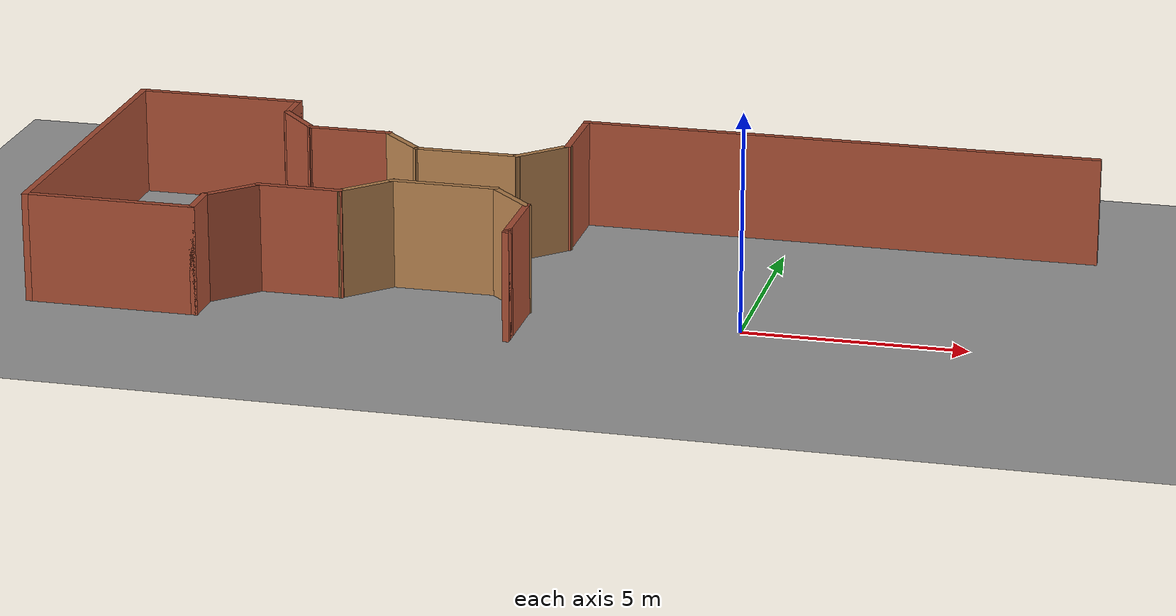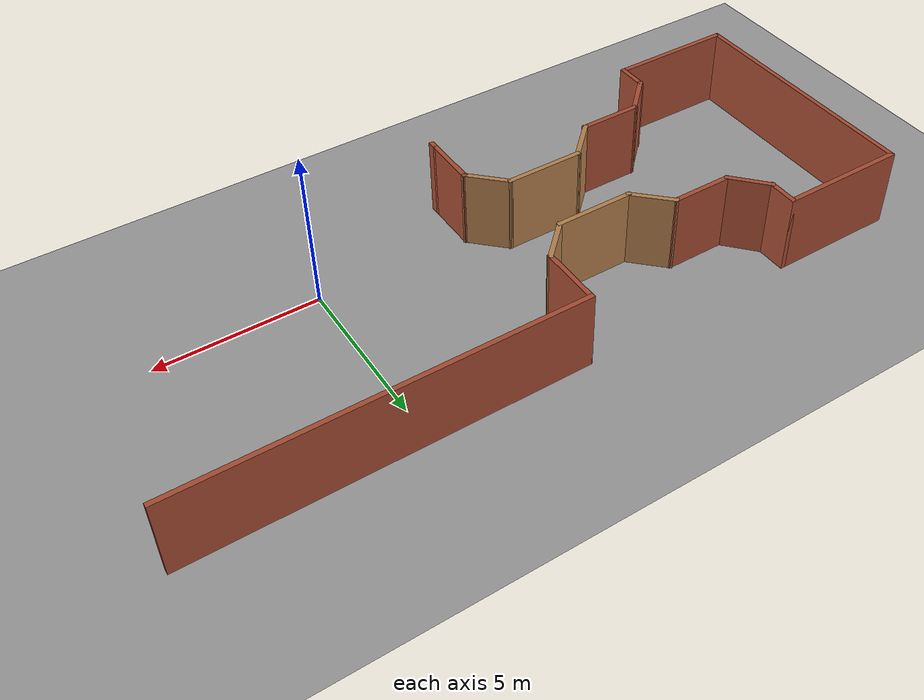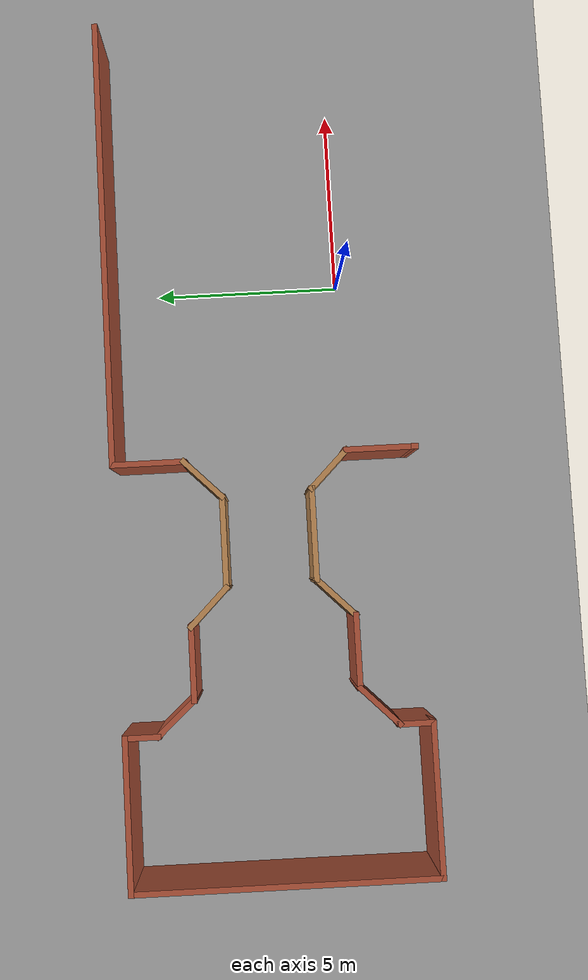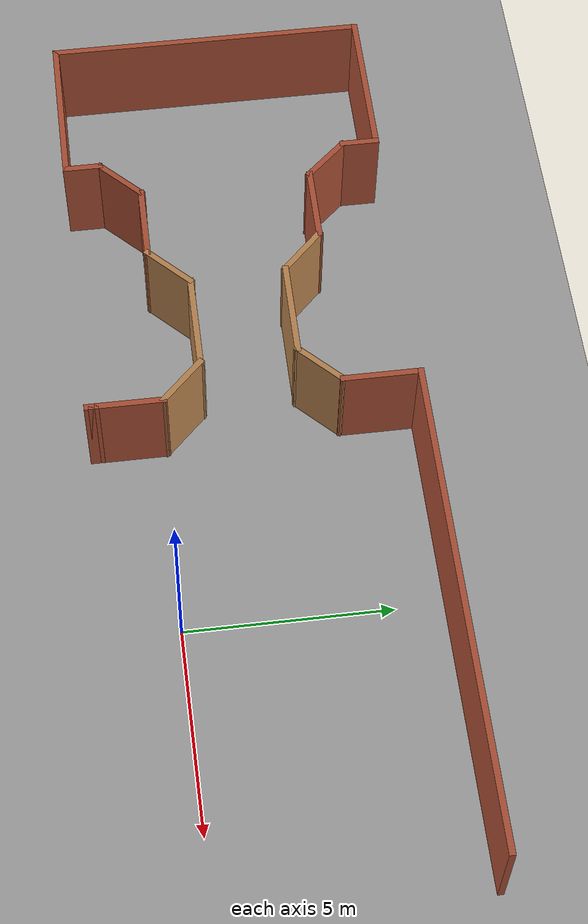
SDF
<sdf version="1.6">
 <world name="default">
  <model name="ground_plane_0">
   <static>1</static>
   <link name="link">
    <collision name="collision">
     <geometry><plane><normal>0 0 1</normal><size>100 100</size></plane></geometry>
     <surface><friction><ode><mu>100</mu><mu2>50</mu2></ode></friction></surface>
    </collision>
    <visual name="visual">
     <cast_shadows>0</cast_shadows>
     <geometry><plane><normal>0 0 1</normal><size>100 100</size></plane></geometry>
     <material>
      <script><uri>file://media/materials/scripts/gazebo.material</uri><name>Gazebo/Grey</name></script>
     </material>
    </visual>
   </link>
   <pose>-18.1806 -4.02372 0 0 -0 0</pose>
  </model>
  <model name="NewEnv1_0">
   <link name="Wall_12">
    <pose>-16.8734 -0.082813 0 0 0 -1.5708</pose>
    <visual name="Wall_12_Visual">
     <pose>0 0 1.25 0 -0 0</pose>
     <geometry><box><size>8 0.15 2.5</size></box></geometry>
     <material>
      <script><uri>file://media/materials/scripts/gazebo.material</uri><name>Gazebo/Bricks</name></script>
      <ambient>1 1 1 1</ambient>
      <diffuse>1 1 1 1</diffuse>
      <specular>0.2 0.2 0.2 1</specular>
      <emissive>0 0 0 1</emissive>
     </material>
    </visual>
    <collision name="Wall_12_Collision">
     <pose>0 0 1.25 0 -0 0</pose>
     <geometry><box><size>8 0.15 2.5</size></box></geometry>
     <surface>
      <friction>
       <ode><mu>1</mu><mu2>1</mu2><fdir1>0 0 0</fdir1><slip1>0</slip1><slip2>0</slip2></ode>
       <torsional>
        <coefficient>1</coefficient>
        <patch_radius>0</patch_radius>
        <surface_radius>0</surface_radius>
        <use_patch_radius>1</use_patch_radius>
        <ode><slip>0</slip></ode>
       </torsional>
      </friction>
      <bounce><restitution_coefficient>0</restitution_coefficient><threshold>1e+06</threshold></bounce>
      <contact>
       <collide_without_contact>0</collide_without_contact>
       <collide_without_contact_bitmask>1</collide_without_contact_bitmask>
       <collide_bitmask>1</collide_bitmask>
       <ode>
        <soft_cfm>0</soft_cfm>
        <soft_erp>0.2</soft_erp>
        <kp>1e+13</kp>
        <kd>1</kd>
        <max_vel>0.01</max_vel>
        <min_depth>0</min_depth>
       </ode>
       <bullet>
        <split_impulse>1</split_impulse>
        <split_impulse_penetration_threshold>-0.01</split_impulse_penetration_threshold>
        <soft_cfm>0</soft_cfm>
        <soft_erp>0.2</soft_erp>
        <kp>1e+13</kp>
        <kd>1</kd>
       </bullet>
      </contact>
     </surface>
    </collision>
   </link>
   <link name="Wall_13">
    <pose>-14.9484 -4.00781 0 0 -0 0</pose>
    <visual name="Wall_13_Visual">
     <pose>0 0 1.25 0 -0 0</pose>
     <geometry><box><size>4 0.15 2.5</size></box></geometry>
     <material>
      <script><uri>file://media/materials/scripts/gazebo.material</uri><name>Gazebo/Bricks</name></script>
      <ambient>1 1 1 1</ambient>
      <diffuse>1 1 1 1</diffuse>
      <specular>0.2 0.2 0.2 1</specular>
      <emissive>0 0 0 1</emissive>
     </material>
    </visual>
    <collision name="Wall_13_Collision">
     <pose>0 0 1.25 0 -0 0</pose>
     <geometry><box><size>4 0.15 2.5</size></box></geometry>
     <surface>
      <friction>
       <ode><mu>1</mu><mu2>1</mu2><fdir1>0 0 0</fdir1><slip1>0</slip1><slip2>0</slip2></ode>
       <torsional>
        <coefficient>1</coefficient>
        <patch_radius>0</patch_radius>
        <surface_radius>0</surface_radius>
        <use_patch_radius>1</use_patch_radius>
        <ode><slip>0</slip></ode>
       </torsional>
      </friction>
      <bounce><restitution_coefficient>0</restitution_coefficient><threshold>1e+06</threshold></bounce>
      <contact>
       <collide_without_contact>0</collide_without_contact>
       <collide_without_contact_bitmask>1</collide_without_contact_bitmask>
       <collide_bitmask>1</collide_bitmask>
       <ode>
        <soft_cfm>0</soft_cfm>
        <soft_erp>0.2</soft_erp>
        <kp>1e+13</kp>
        <kd>1</kd>
        <max_vel>0.01</max_vel>
        <min_depth>0</min_depth>
       </ode>
       <bullet>
        <split_impulse>1</split_impulse>
        <split_impulse_penetration_threshold>-0.01</split_impulse_penetration_threshold>
        <soft_cfm>0</soft_cfm>
        <soft_erp>0.2</soft_erp>
        <kp>1e+13</kp>
        <kd>1</kd>
       </bullet>
      </contact>
     </surface>
    </collision>
   </link>
   <link name="Wall_14">
    <pose>-13.0234 -3.58281 0 0 -0 1.5708</pose>
    <visual name="Wall_14_Visual">
     <pose>0 0 1.25 0 -0 0</pose>
     <geometry><box><size>1 0.15 2.5</size></box></geometry>
     <material>
      <script><uri>file://media/materials/scripts/gazebo.material</uri><name>Gazebo/Bricks</name></script>
      <ambient>1 1 1 1</ambient>
      <diffuse>1 1 1 1</diffuse>
      <specular>0.2 0.2 0.2 1</specular>
      <emissive>0 0 0 1</emissive>
     </material>
    </visual>
    <collision name="Wall_14_Collision">
     <pose>0 0 1.25 0 -0 0</pose>
     <geometry><box><size>1 0.15 2.5</size></box></geometry>
     <surface>
      <friction>
       <ode><mu>1</mu><mu2>1</mu2><fdir1>0 0 0</fdir1><slip1>0</slip1><slip2>0</slip2></ode>
       <torsional>
        <coefficient>1</coefficient>
        <patch_radius>0</patch_radius>
        <surface_radius>0</surface_radius>
        <use_patch_radius>1</use_patch_radius>
        <ode><slip>0</slip></ode>
       </torsional>
      </friction>
      <bounce><restitution_coefficient>0</restitution_coefficient><threshold>1e+06</threshold></bounce>
      <contact>
       <collide_without_contact>0</collide_without_contact>
       <collide_without_contact_bitmask>1</collide_without_contact_bitmask>
       <collide_bitmask>1</collide_bitmask>
       <ode>
        <soft_cfm>0</soft_cfm>
        <soft_erp>0.2</soft_erp>
        <kp>1e+13</kp>
        <kd>1</kd>
        <max_vel>0.01</max_vel>
        <min_depth>0</min_depth>
       </ode>
       <bullet>
        <split_impulse>1</split_impulse>
        <split_impulse_penetration_threshold>-0.01</split_impulse_penetration_threshold>
        <soft_cfm>0</soft_cfm>
        <soft_erp>0.2</soft_erp>
        <kp>1e+13</kp>
        <kd>1</kd>
       </bullet>
      </contact>
     </surface>
    </collision>
   </link>
   <link name="Wall_15">
    <pose>-12.5461 -2.68052 0 0 -0 0.785398</pose>
    <visual name="Wall_15_Visual">
     <pose>0 0 1.25 0 -0 0</pose>
     <geometry><box><size>1.5 0.15 2.5</size></box></geometry>
     <material>
      <script><uri>file://media/materials/scripts/gazebo.material</uri><name>Gazebo/Bricks</name></script>
      <ambient>1 1 1 1</ambient>
      <diffuse>1 1 1 1</diffuse>
      <specular>0.2 0.2 0.2 1</specular>
      <emissive>0 0 0 1</emissive>
     </material>
    </visual>
    <collision name="Wall_15_Collision">
     <pose>0 0 1.25 0 -0 0</pose>
     <geometry><box><size>1.5 0.15 2.5</size></box></geometry>
     <surface>
      <friction>
       <ode><mu>1</mu><mu2>1</mu2><fdir1>0 0 0</fdir1><slip1>0</slip1><slip2>0</slip2></ode>
       <torsional>
        <coefficient>1</coefficient>
        <patch_radius>0</patch_radius>
        <surface_radius>0</surface_radius>
        <use_patch_radius>1</use_patch_radius>
        <ode><slip>0</slip></ode>
       </torsional>
      </friction>
      <bounce><restitution_coefficient>0</restitution_coefficient><threshold>1e+06</threshold></bounce>
      <contact>
       <collide_without_contact>0</collide_without_contact>
       <collide_without_contact_bitmask>1</collide_without_contact_bitmask>
       <collide_bitmask>1</collide_bitmask>
       <ode>
        <soft_cfm>0</soft_cfm>
        <soft_erp>0.2</soft_erp>
        <kp>1e+13</kp>
        <kd>1</kd>
        <max_vel>0.01</max_vel>
        <min_depth>0</min_depth>
       </ode>
       <bullet>
        <split_impulse>1</split_impulse>
        <split_impulse_penetration_threshold>-0.01</split_impulse_penetration_threshold>
        <soft_cfm>0</soft_cfm>
        <soft_erp>0.2</soft_erp>
        <kp>1e+13</kp>
        <kd>1</kd>
       </bullet>
      </contact>
     </surface>
    </collision>
   </link>
   <link name="Wall_16">
    <pose>-11.1438 -2.20322 0 0 -0 0</pose>
    <visual name="Wall_16_Visual">
     <pose>0 0 1.25 0 -0 0</pose>
     <geometry><box><size>2 0.15 2.5</size></box></geometry>
     <material>
      <script><uri>file://media/materials/scripts/gazebo.material</uri><name>Gazebo/Bricks</name></script>
      <ambient>1 1 1 1</ambient>
      <diffuse>1 1 1 1</diffuse>
      <specular>0.2 0.2 0.2 1</specular>
      <emissive>0 0 0 1</emissive>
     </material>
    </visual>
    <collision name="Wall_16_Collision">
     <pose>0 0 1.25 0 -0 0</pose>
     <geometry><box><size>2 0.15 2.5</size></box></geometry>
     <surface>
      <friction>
       <ode><mu>1</mu><mu2>1</mu2><fdir1>0 0 0</fdir1><slip1>0</slip1><slip2>0</slip2></ode>
       <torsional>
        <coefficient>1</coefficient>
        <patch_radius>0</patch_radius>
        <surface_radius>0</surface_radius>
        <use_patch_radius>1</use_patch_radius>
        <ode><slip>0</slip></ode>
       </torsional>
      </friction>
      <bounce><restitution_coefficient>0</restitution_coefficient><threshold>1e+06</threshold></bounce>
      <contact>
       <collide_without_contact>0</collide_without_contact>
       <collide_without_contact_bitmask>1</collide_without_contact_bitmask>
       <collide_bitmask>1</collide_bitmask>
       <ode>
        <soft_cfm>0</soft_cfm>
        <soft_erp>0.2</soft_erp>
        <kp>1e+13</kp>
        <kd>1</kd>
        <max_vel>0.01</max_vel>
        <min_depth>0</min_depth>
       </ode>
       <bullet>
        <split_impulse>1</split_impulse>
        <split_impulse_penetration_threshold>-0.01</split_impulse_penetration_threshold>
        <soft_cfm>0</soft_cfm>
        <soft_erp>0.2</soft_erp>
        <kp>1e+13</kp>
        <kd>1</kd>
       </bullet>
      </contact>
     </surface>
    </collision>
   </link>
   <link name="Wall_17">
    <pose>-9.74146 -1.72592 0 0 -0 0.785398</pose>
    <visual name="Wall_17_Visual">
     <pose>0 0 1.25 0 -0 0</pose>
     <geometry><box><size>1.5 0.15 2.5</size></box></geometry>
     <material>
      <script><uri>file://media/materials/scripts/gazebo.material</uri><name>Gazebo/Wood</name></script>
      <ambient>1 1 1 1</ambient>
      <diffuse>1 1 1 1</diffuse>
      <specular>0.2 0.2 0.2 1</specular>
      <emissive>0 0 0 1</emissive>
     </material>
    </visual>
    <collision name="Wall_17_Collision">
     <pose>0 0 1.25 0 -0 0</pose>
     <geometry><box><size>1.5 0.15 2.5</size></box></geometry>
     <surface>
      <friction>
       <ode><mu>1</mu><mu2>1</mu2><fdir1>0 0 0</fdir1><slip1>0</slip1><slip2>0</slip2></ode>
       <torsional>
        <coefficient>1</coefficient>
        <patch_radius>0</patch_radius>
        <surface_radius>0</surface_radius>
        <use_patch_radius>1</use_patch_radius>
        <ode><slip>0</slip></ode>
       </torsional>
      </friction>
      <bounce><restitution_coefficient>0</restitution_coefficient><threshold>1e+06</threshold></bounce>
      <contact>
       <collide_without_contact>0</collide_without_contact>
       <collide_without_contact_bitmask>1</collide_without_contact_bitmask>
       <collide_bitmask>1</collide_bitmask>
       <ode>
        <soft_cfm>0</soft_cfm>
        <soft_erp>0.2</soft_erp>
        <kp>1e+13</kp>
        <kd>1</kd>
        <max_vel>0.01</max_vel>
        <min_depth>0</min_depth>
       </ode>
       <bullet>
        <split_impulse>1</split_impulse>
        <split_impulse_penetration_threshold>-0.01</split_impulse_penetration_threshold>
        <soft_cfm>0</soft_cfm>
        <soft_erp>0.2</soft_erp>
        <kp>1e+13</kp>
        <kd>1</kd>
       </bullet>
      </contact>
     </surface>
    </collision>
   </link>
   <link name="Wall_19">
    <pose>-8.08916 -1.24863 0 0 -0 0</pose>
    <visual name="Wall_19_Visual">
     <pose>0 0 1.25 0 -0 0</pose>
     <geometry><box><size>2.5 0.15 2.5</size></box></geometry>
     <material>
      <script><uri>file://media/materials/scripts/gazebo.material</uri><name>Gazebo/Wood</name></script>
      <ambient>1 1 1 1</ambient>
      <diffuse>1 1 1 1</diffuse>
      <specular>0.2 0.2 0.2 1</specular>
      <emissive>0 0 0 1</emissive>
     </material>
    </visual>
    <collision name="Wall_19_Collision">
     <pose>0 0 1.25 0 -0 0</pose>
     <geometry><box><size>2.5 0.15 2.5</size></box></geometry>
     <surface>
      <friction>
       <ode><mu>1</mu><mu2>1</mu2><fdir1>0 0 0</fdir1><slip1>0</slip1><slip2>0</slip2></ode>
       <torsional>
        <coefficient>1</coefficient>
        <patch_radius>0</patch_radius>
        <surface_radius>0</surface_radius>
        <use_patch_radius>1</use_patch_radius>
        <ode><slip>0</slip></ode>
       </torsional>
      </friction>
      <bounce><restitution_coefficient>0</restitution_coefficient><threshold>1e+06</threshold></bounce>
      <contact>
       <collide_without_contact>0</collide_without_contact>
       <collide_without_contact_bitmask>1</collide_without_contact_bitmask>
       <collide_bitmask>1</collide_bitmask>
       <ode>
        <soft_cfm>0</soft_cfm>
        <soft_erp>0.2</soft_erp>
        <kp>1e+13</kp>
        <kd>1</kd>
        <max_vel>0.01</max_vel>
        <min_depth>0</min_depth>
       </ode>
       <bullet>
        <split_impulse>1</split_impulse>
        <split_impulse_penetration_threshold>-0.01</split_impulse_penetration_threshold>
        <soft_cfm>0</soft_cfm>
        <soft_erp>0.2</soft_erp>
        <kp>1e+13</kp>
        <kd>1</kd>
       </bullet>
      </contact>
     </surface>
    </collision>
   </link>
   <link name="Wall_20">
    <pose>-6.43687 -1.72592 0 0 0 -0.785398</pose>
    <visual name="Wall_20_Visual">
     <pose>0 0 1.25 0 -0 0</pose>
     <geometry><box><size>1.5 0.15 2.5</size></box></geometry>
     <material>
      <script><uri>file://media/materials/scripts/gazebo.material</uri><name>Gazebo/Wood</name></script>
      <ambient>1 1 1 1</ambient>
      <diffuse>1 1 1 1</diffuse>
      <specular>0.2 0.2 0.2 1</specular>
      <emissive>0 0 0 1</emissive>
     </material>
    </visual>
    <collision name="Wall_20_Collision">
     <pose>0 0 1.25 0 -0 0</pose>
     <geometry><box><size>1.5 0.15 2.5</size></box></geometry>
     <surface>
      <friction>
       <ode><mu>1</mu><mu2>1</mu2><fdir1>0 0 0</fdir1><slip1>0</slip1><slip2>0</slip2></ode>
       <torsional>
        <coefficient>1</coefficient>
        <patch_radius>0</patch_radius>
        <surface_radius>0</surface_radius>
        <use_patch_radius>1</use_patch_radius>
        <ode><slip>0</slip></ode>
       </torsional>
      </friction>
      <bounce><restitution_coefficient>0</restitution_coefficient><threshold>1e+06</threshold></bounce>
      <contact>
       <collide_without_contact>0</collide_without_contact>
       <collide_without_contact_bitmask>1</collide_without_contact_bitmask>
       <collide_bitmask>1</collide_bitmask>
       <ode>
        <soft_cfm>0</soft_cfm>
        <soft_erp>0.2</soft_erp>
        <kp>1e+13</kp>
        <kd>1</kd>
        <max_vel>0.01</max_vel>
        <min_depth>0</min_depth>
       </ode>
       <bullet>
        <split_impulse>1</split_impulse>
        <split_impulse_penetration_threshold>-0.01</split_impulse_penetration_threshold>
        <soft_cfm>0</soft_cfm>
        <soft_erp>0.2</soft_erp>
        <kp>1e+13</kp>
        <kd>1</kd>
       </bullet>
      </contact>
     </surface>
    </collision>
   </link>
   <link name="Wall_21">
    <pose>-5.95957 -3.00322 0 0 0 -1.5708</pose>
    <visual name="Wall_21_Visual">
     <pose>0 0 1.25 0 -0 0</pose>
     <geometry><box><size>1.75 0.15 2.5</size></box></geometry>
     <material>
      <script><uri>file://media/materials/scripts/gazebo.material</uri><name>Gazebo/Bricks</name></script>
      <ambient>1 1 1 1</ambient>
      <diffuse>1 1 1 1</diffuse>
      <specular>0.2 0.2 0.2 1</specular>
      <emissive>0 0 0 1</emissive>
     </material>
    </visual>
    <collision name="Wall_21_Collision">
     <pose>0 0 1.25 0 -0 0</pose>
     <geometry><box><size>1.75 0.15 2.5</size></box></geometry>
     <surface>
      <friction>
       <ode><mu>1</mu><mu2>1</mu2><fdir1>0 0 0</fdir1><slip1>0</slip1><slip2>0</slip2></ode>
       <torsional>
        <coefficient>1</coefficient>
        <patch_radius>0</patch_radius>
        <surface_radius>0</surface_radius>
        <use_patch_radius>1</use_patch_radius>
        <ode><slip>0</slip></ode>
       </torsional>
      </friction>
      <bounce><restitution_coefficient>0</restitution_coefficient><threshold>1e+06</threshold></bounce>
      <contact>
       <collide_without_contact>0</collide_without_contact>
       <collide_without_contact_bitmask>1</collide_without_contact_bitmask>
       <collide_bitmask>1</collide_bitmask>
       <ode>
        <soft_cfm>0</soft_cfm>
        <soft_erp>0.2</soft_erp>
        <kp>1e+13</kp>
        <kd>1</kd>
        <max_vel>0.01</max_vel>
        <min_depth>0</min_depth>
       </ode>
       <bullet>
        <split_impulse>1</split_impulse>
        <split_impulse_penetration_threshold>-0.01</split_impulse_penetration_threshold>
        <soft_cfm>0</soft_cfm>
        <soft_erp>0.2</soft_erp>
        <kp>1e+13</kp>
        <kd>1</kd>
       </bullet>
      </contact>
     </surface>
    </collision>
   </link>
   <link name="Wall_22">
    <pose>-5.95957 -3.85322 0 0 0 -1.5708</pose>
    <visual name="Wall_22_Visual">
     <pose>0 0 1.25 0 -0 0</pose>
     <geometry><box><size>0.25 0.15 2.5</size></box></geometry>
     <material>
      <script><uri>file://media/materials/scripts/gazebo.material</uri><name>Gazebo/Bricks</name></script>
      <ambient>1 1 1 1</ambient>
      <diffuse>1 1 1 1</diffuse>
      <specular>0.2 0.2 0.2 1</specular>
      <emissive>0 0 0 1</emissive>
     </material>
    </visual>
    <collision name="Wall_22_Collision">
     <pose>0 0 1.25 0 -0 0</pose>
     <geometry><box><size>0.25 0.15 2.5</size></box></geometry>
     <surface>
      <friction>
       <ode><mu>1</mu><mu2>1</mu2><fdir1>0 0 0</fdir1><slip1>0</slip1><slip2>0</slip2></ode>
       <torsional>
        <coefficient>1</coefficient>
        <patch_radius>0</patch_radius>
        <surface_radius>0</surface_radius>
        <use_patch_radius>1</use_patch_radius>
        <ode><slip>0</slip></ode>
       </torsional>
      </friction>
      <bounce><restitution_coefficient>0</restitution_coefficient><threshold>1e+06</threshold></bounce>
      <contact>
       <collide_without_contact>0</collide_without_contact>
       <collide_without_contact_bitmask>1</collide_without_contact_bitmask>
       <collide_bitmask>1</collide_bitmask>
       <ode>
        <soft_cfm>0</soft_cfm>
        <soft_erp>0.2</soft_erp>
        <kp>1e+13</kp>
        <kd>1</kd>
        <max_vel>0.01</max_vel>
        <min_depth>0</min_depth>
       </ode>
       <bullet>
        <split_impulse>1</split_impulse>
        <split_impulse_penetration_threshold>-0.01</split_impulse_penetration_threshold>
        <soft_cfm>0</soft_cfm>
        <soft_erp>0.2</soft_erp>
        <kp>1e+13</kp>
        <kd>1</kd>
       </bullet>
      </contact>
     </surface>
    </collision>
   </link>
   <link name="Wall_23">
    <pose>-5.95957 -3.95322 0 0 0 -1.5708</pose>
    <visual name="Wall_23_Visual">
     <pose>0 0 1.25 0 -0 0</pose>
     <geometry><box><size>0.25 0.15 2.5</size></box></geometry>
     <material>
      <script><uri>file://media/materials/scripts/gazebo.material</uri><name>Gazebo/Bricks</name></script>
      <ambient>1 1 1 1</ambient>
      <diffuse>1 1 1 1</diffuse>
      <specular>0.2 0.2 0.2 1</specular>
      <emissive>0 0 0 1</emissive>
     </material>
    </visual>
    <collision name="Wall_23_Collision">
     <pose>0 0 1.25 0 -0 0</pose>
     <geometry><box><size>0.25 0.15 2.5</size></box></geometry>
     <surface>
      <friction>
       <ode><mu>1</mu><mu2>1</mu2><fdir1>0 0 0</fdir1><slip1>0</slip1><slip2>0</slip2></ode>
       <torsional>
        <coefficient>1</coefficient>
        <patch_radius>0</patch_radius>
        <surface_radius>0</surface_radius>
        <use_patch_radius>1</use_patch_radius>
        <ode><slip>0</slip></ode>
       </torsional>
      </friction>
      <bounce><restitution_coefficient>0</restitution_coefficient><threshold>1e+06</threshold></bounce>
      <contact>
       <collide_without_contact>0</collide_without_contact>
       <collide_without_contact_bitmask>1</collide_without_contact_bitmask>
       <collide_bitmask>1</collide_bitmask>
       <ode>
        <soft_cfm>0</soft_cfm>
        <soft_erp>0.2</soft_erp>
        <kp>1e+13</kp>
        <kd>1</kd>
        <max_vel>0.01</max_vel>
        <min_depth>0</min_depth>
       </ode>
       <bullet>
        <split_impulse>1</split_impulse>
        <split_impulse_penetration_threshold>-0.01</split_impulse_penetration_threshold>
        <soft_cfm>0</soft_cfm>
        <soft_erp>0.2</soft_erp>
        <kp>1e+13</kp>
        <kd>1</kd>
       </bullet>
      </contact>
     </surface>
    </collision>
   </link>
   <link name="Wall_47">
    <pose>-14.9484 3.84219 0 0 -0 0</pose>
    <visual name="Wall_47_Visual">
     <pose>0 0 1.25 0 -0 0</pose>
     <geometry><box><size>4 0.15 2.5</size></box></geometry>
     <material>
      <script><uri>file://media/materials/scripts/gazebo.material</uri><name>Gazebo/Bricks</name></script>
      <ambient>1 1 1 1</ambient>
      <diffuse>1 1 1 1</diffuse>
      <specular>0.2 0.2 0.2 1</specular>
      <emissive>0 0 0 1</emissive>
     </material>
    </visual>
    <collision name="Wall_47_Collision">
     <pose>0 0 1.25 0 -0 0</pose>
     <geometry><box><size>4 0.15 2.5</size></box></geometry>
     <surface>
      <friction>
       <ode><mu>1</mu><mu2>1</mu2><fdir1>0 0 0</fdir1><slip1>0</slip1><slip2>0</slip2></ode>
       <torsional>
        <coefficient>1</coefficient>
        <patch_radius>0</patch_radius>
        <surface_radius>0</surface_radius>
        <use_patch_radius>1</use_patch_radius>
        <ode><slip>0</slip></ode>
       </torsional>
      </friction>
      <bounce><restitution_coefficient>0</restitution_coefficient><threshold>1e+06</threshold></bounce>
      <contact>
       <collide_without_contact>0</collide_without_contact>
       <collide_without_contact_bitmask>1</collide_without_contact_bitmask>
       <collide_bitmask>1</collide_bitmask>
       <ode>
        <soft_cfm>0</soft_cfm>
        <soft_erp>0.2</soft_erp>
        <kp>1e+13</kp>
        <kd>1</kd>
        <max_vel>0.01</max_vel>
        <min_depth>0</min_depth>
       </ode>
       <bullet>
        <split_impulse>1</split_impulse>
        <split_impulse_penetration_threshold>-0.01</split_impulse_penetration_threshold>
        <soft_cfm>0</soft_cfm>
        <soft_erp>0.2</soft_erp>
        <kp>1e+13</kp>
        <kd>1</kd>
       </bullet>
      </contact>
     </surface>
    </collision>
   </link>
   <link name="Wall_48">
    <pose>-13.0234 3.41719 0 0 0 -1.5708</pose>
    <visual name="Wall_48_Visual">
     <pose>0 0 1.25 0 -0 0</pose>
     <geometry><box><size>1 0.15 2.5</size></box></geometry>
     <material>
      <script><uri>file://media/materials/scripts/gazebo.material</uri><name>Gazebo/Bricks</name></script>
      <ambient>1 1 1 1</ambient>
      <diffuse>1 1 1 1</diffuse>
      <specular>0.2 0.2 0.2 1</specular>
      <emissive>0 0 0 1</emissive>
     </material>
    </visual>
    <collision name="Wall_48_Collision">
     <pose>0 0 1.25 0 -0 0</pose>
     <geometry><box><size>1 0.15 2.5</size></box></geometry>
     <surface>
      <friction>
       <ode><mu>1</mu><mu2>1</mu2><fdir1>0 0 0</fdir1><slip1>0</slip1><slip2>0</slip2></ode>
       <torsional>
        <coefficient>1</coefficient>
        <patch_radius>0</patch_radius>
        <surface_radius>0</surface_radius>
        <use_patch_radius>1</use_patch_radius>
        <ode><slip>0</slip></ode>
       </torsional>
      </friction>
      <bounce><restitution_coefficient>0</restitution_coefficient><threshold>1e+06</threshold></bounce>
      <contact>
       <collide_without_contact>0</collide_without_contact>
       <collide_without_contact_bitmask>1</collide_without_contact_bitmask>
       <collide_bitmask>1</collide_bitmask>
       <ode>
        <soft_cfm>0</soft_cfm>
        <soft_erp>0.2</soft_erp>
        <kp>1e+13</kp>
        <kd>1</kd>
        <max_vel>0.01</max_vel>
        <min_depth>0</min_depth>
       </ode>
       <bullet>
        <split_impulse>1</split_impulse>
        <split_impulse_penetration_threshold>-0.01</split_impulse_penetration_threshold>
        <soft_cfm>0</soft_cfm>
        <soft_erp>0.2</soft_erp>
        <kp>1e+13</kp>
        <kd>1</kd>
       </bullet>
      </contact>
     </surface>
    </collision>
   </link>
   <link name="Wall_49">
    <pose>-12.5919 2.51489 0 0 0 -0.83585</pose>
    <visual name="Wall_49_Visual">
     <pose>0 0 1.25 0 -0 0</pose>
     <geometry><box><size>1.43675 0.15 2.5</size></box></geometry>
     <material>
      <script><uri>file://media/materials/scripts/gazebo.material</uri><name>Gazebo/Bricks</name></script>
      <ambient>1 1 1 1</ambient>
      <diffuse>1 1 1 1</diffuse>
      <specular>0.2 0.2 0.2 1</specular>
      <emissive>0 0 0 1</emissive>
     </material>
    </visual>
    <collision name="Wall_49_Collision">
     <pose>0 0 1.25 0 -0 0</pose>
     <geometry><box><size>1.43675 0.15 2.5</size></box></geometry>
     <surface>
      <friction>
       <ode><mu>1</mu><mu2>1</mu2><fdir1>0 0 0</fdir1><slip1>0</slip1><slip2>0</slip2></ode>
       <torsional>
        <coefficient>1</coefficient>
        <patch_radius>0</patch_radius>
        <surface_radius>0</surface_radius>
        <use_patch_radius>1</use_patch_radius>
        <ode><slip>0</slip></ode>
       </torsional>
      </friction>
      <bounce><restitution_coefficient>0</restitution_coefficient><threshold>1e+06</threshold></bounce>
      <contact>
       <collide_without_contact>0</collide_without_contact>
       <collide_without_contact_bitmask>1</collide_without_contact_bitmask>
       <collide_bitmask>1</collide_bitmask>
       <ode>
        <soft_cfm>0</soft_cfm>
        <soft_erp>0.2</soft_erp>
        <kp>1e+13</kp>
        <kd>1</kd>
        <max_vel>0.01</max_vel>
        <min_depth>0</min_depth>
       </ode>
       <bullet>
        <split_impulse>1</split_impulse>
        <split_impulse_penetration_threshold>-0.01</split_impulse_penetration_threshold>
        <soft_cfm>0</soft_cfm>
        <soft_erp>0.2</soft_erp>
        <kp>1e+13</kp>
        <kd>1</kd>
       </bullet>
      </contact>
     </surface>
    </collision>
   </link>
   <link name="Wall_52">
    <pose>-11.2355 2.03759 0 0 -0 0</pose>
    <visual name="Wall_52_Visual">
     <pose>0 0 1.25 0 -0 0</pose>
     <geometry><box><size>2 0.15 2.5</size></box></geometry>
     <material>
      <script><uri>file://media/materials/scripts/gazebo.material</uri><name>Gazebo/Bricks</name></script>
      <ambient>1 1 1 1</ambient>
      <diffuse>1 1 1 1</diffuse>
      <specular>0.2 0.2 0.2 1</specular>
      <emissive>0 0 0 1</emissive>
     </material>
    </visual>
    <collision name="Wall_52_Collision">
     <pose>0 0 1.25 0 -0 0</pose>
     <geometry><box><size>2 0.15 2.5</size></box></geometry>
     <surface>
      <friction>
       <ode><mu>1</mu><mu2>1</mu2><fdir1>0 0 0</fdir1><slip1>0</slip1><slip2>0</slip2></ode>
       <torsional>
        <coefficient>1</coefficient>
        <patch_radius>0</patch_radius>
        <surface_radius>0</surface_radius>
        <use_patch_radius>1</use_patch_radius>
        <ode><slip>0</slip></ode>
       </torsional>
      </friction>
      <bounce><restitution_coefficient>0</restitution_coefficient><threshold>1e+06</threshold></bounce>
      <contact>
       <collide_without_contact>0</collide_without_contact>
       <collide_without_contact_bitmask>1</collide_without_contact_bitmask>
       <collide_bitmask>1</collide_bitmask>
       <ode>
        <soft_cfm>0</soft_cfm>
        <soft_erp>0.2</soft_erp>
        <kp>1e+13</kp>
        <kd>1</kd>
        <max_vel>0.01</max_vel>
        <min_depth>0</min_depth>
       </ode>
       <bullet>
        <split_impulse>1</split_impulse>
        <split_impulse_penetration_threshold>-0.01</split_impulse_penetration_threshold>
        <soft_cfm>0</soft_cfm>
        <soft_erp>0.2</soft_erp>
        <kp>1e+13</kp>
        <kd>1</kd>
       </bullet>
      </contact>
     </surface>
    </collision>
   </link>
   <link name="Wall_53">
    <pose>-9.83323 1.5603 0 0 0 -0.785398</pose>
    <visual name="Wall_53_Visual">
     <pose>0 0 1.25 0 -0 0</pose>
     <geometry><box><size>1.5 0.15 2.5</size></box></geometry>
     <material>
      <script><uri>file://media/materials/scripts/gazebo.material</uri><name>Gazebo/Wood</name></script>
      <ambient>1 1 1 1</ambient>
      <diffuse>1 1 1 1</diffuse>
      <specular>0.2 0.2 0.2 1</specular>
      <emissive>0 0 0 1</emissive>
     </material>
    </visual>
    <collision name="Wall_53_Collision">
     <pose>0 0 1.25 0 -0 0</pose>
     <geometry><box><size>1.5 0.15 2.5</size></box></geometry>
     <surface>
      <friction>
       <ode><mu>1</mu><mu2>1</mu2><fdir1>0 0 0</fdir1><slip1>0</slip1><slip2>0</slip2></ode>
       <torsional>
        <coefficient>1</coefficient>
        <patch_radius>0</patch_radius>
        <surface_radius>0</surface_radius>
        <use_patch_radius>1</use_patch_radius>
        <ode><slip>0</slip></ode>
       </torsional>
      </friction>
      <bounce><restitution_coefficient>0</restitution_coefficient><threshold>1e+06</threshold></bounce>
      <contact>
       <collide_without_contact>0</collide_without_contact>
       <collide_without_contact_bitmask>1</collide_without_contact_bitmask>
       <collide_bitmask>1</collide_bitmask>
       <ode>
        <soft_cfm>0</soft_cfm>
        <soft_erp>0.2</soft_erp>
        <kp>1e+13</kp>
        <kd>1</kd>
        <max_vel>0.01</max_vel>
        <min_depth>0</min_depth>
       </ode>
       <bullet>
        <split_impulse>1</split_impulse>
        <split_impulse_penetration_threshold>-0.01</split_impulse_penetration_threshold>
        <soft_cfm>0</soft_cfm>
        <soft_erp>0.2</soft_erp>
        <kp>1e+13</kp>
        <kd>1</kd>
       </bullet>
      </contact>
     </surface>
    </collision>
   </link>
   <link name="Wall_54">
    <pose>-8.18093 1.083 0 0 -0 0</pose>
    <visual name="Wall_54_Visual">
     <pose>0 0 1.25 0 -0 0</pose>
     <geometry><box><size>2.5 0.15 2.5</size></box></geometry>
     <material>
      <script><uri>file://media/materials/scripts/gazebo.material</uri><name>Gazebo/Wood</name></script>
      <ambient>1 1 1 1</ambient>
      <diffuse>1 1 1 1</diffuse>
      <specular>0.2 0.2 0.2 1</specular>
      <emissive>0 0 0 1</emissive>
     </material>
    </visual>
    <collision name="Wall_54_Collision">
     <pose>0 0 1.25 0 -0 0</pose>
     <geometry><box><size>2.5 0.15 2.5</size></box></geometry>
     <surface>
      <friction>
       <ode><mu>1</mu><mu2>1</mu2><fdir1>0 0 0</fdir1><slip1>0</slip1><slip2>0</slip2></ode>
       <torsional>
        <coefficient>1</coefficient>
        <patch_radius>0</patch_radius>
        <surface_radius>0</surface_radius>
        <use_patch_radius>1</use_patch_radius>
        <ode><slip>0</slip></ode>
       </torsional>
      </friction>
      <bounce><restitution_coefficient>0</restitution_coefficient><threshold>1e+06</threshold></bounce>
      <contact>
       <collide_without_contact>0</collide_without_contact>
       <collide_without_contact_bitmask>1</collide_without_contact_bitmask>
       <collide_bitmask>1</collide_bitmask>
       <ode>
        <soft_cfm>0</soft_cfm>
        <soft_erp>0.2</soft_erp>
        <kp>1e+13</kp>
        <kd>1</kd>
        <max_vel>0.01</max_vel>
        <min_depth>0</min_depth>
       </ode>
       <bullet>
        <split_impulse>1</split_impulse>
        <split_impulse_penetration_threshold>-0.01</split_impulse_penetration_threshold>
        <soft_cfm>0</soft_cfm>
        <soft_erp>0.2</soft_erp>
        <kp>1e+13</kp>
        <kd>1</kd>
       </bullet>
      </contact>
     </surface>
    </collision>
   </link>
   <link name="Wall_55">
    <pose>-6.52864 1.5603 0 0 -0 0.785398</pose>
    <visual name="Wall_55_Visual">
     <pose>0 0 1.25 0 -0 0</pose>
     <geometry><box><size>1.5 0.15 2.5</size></box></geometry>
     <material>
      <script><uri>file://media/materials/scripts/gazebo.material</uri><name>Gazebo/Wood</name></script>
      <ambient>1 1 1 1</ambient>
      <diffuse>1 1 1 1</diffuse>
      <specular>0.2 0.2 0.2 1</specular>
      <emissive>0 0 0 1</emissive>
     </material>
    </visual>
    <collision name="Wall_55_Collision">
     <pose>0 0 1.25 0 -0 0</pose>
     <geometry><box><size>1.5 0.15 2.5</size></box></geometry>
     <surface>
      <friction>
       <ode><mu>1</mu><mu2>1</mu2><fdir1>0 0 0</fdir1><slip1>0</slip1><slip2>0</slip2></ode>
       <torsional>
        <coefficient>1</coefficient>
        <patch_radius>0</patch_radius>
        <surface_radius>0</surface_radius>
        <use_patch_radius>1</use_patch_radius>
        <ode><slip>0</slip></ode>
       </torsional>
      </friction>
      <bounce><restitution_coefficient>0</restitution_coefficient><threshold>1e+06</threshold></bounce>
      <contact>
       <collide_without_contact>0</collide_without_contact>
       <collide_without_contact_bitmask>1</collide_without_contact_bitmask>
       <collide_bitmask>1</collide_bitmask>
       <ode>
        <soft_cfm>0</soft_cfm>
        <soft_erp>0.2</soft_erp>
        <kp>1e+13</kp>
        <kd>1</kd>
        <max_vel>0.01</max_vel>
        <min_depth>0</min_depth>
       </ode>
       <bullet>
        <split_impulse>1</split_impulse>
        <split_impulse_penetration_threshold>-0.01</split_impulse_penetration_threshold>
        <soft_cfm>0</soft_cfm>
        <soft_erp>0.2</soft_erp>
        <kp>1e+13</kp>
        <kd>1</kd>
       </bullet>
      </contact>
     </surface>
    </collision>
   </link>
   <link name="Wall_56">
    <pose>-6.05134 2.96259 0 0 -0 1.5708</pose>
    <visual name="Wall_56_Visual">
     <pose>0 0 1.25 0 -0 0</pose>
     <geometry><box><size>2 0.15 2.5</size></box></geometry>
     <material>
      <script><uri>file://media/materials/scripts/gazebo.material</uri><name>Gazebo/Bricks</name></script>
      <ambient>1 1 1 1</ambient>
      <diffuse>1 1 1 1</diffuse>
      <specular>0.2 0.2 0.2 1</specular>
      <emissive>0 0 0 1</emissive>
     </material>
    </visual>
    <collision name="Wall_56_Collision">
     <pose>0 0 1.25 0 -0 0</pose>
     <geometry><box><size>2 0.15 2.5</size></box></geometry>
     <surface>
      <friction>
       <ode><mu>1</mu><mu2>1</mu2><fdir1>0 0 0</fdir1><slip1>0</slip1><slip2>0</slip2></ode>
       <torsional>
        <coefficient>1</coefficient>
        <patch_radius>0</patch_radius>
        <surface_radius>0</surface_radius>
        <use_patch_radius>1</use_patch_radius>
        <ode><slip>0</slip></ode>
       </torsional>
      </friction>
      <bounce><restitution_coefficient>0</restitution_coefficient><threshold>1e+06</threshold></bounce>
      <contact>
       <collide_without_contact>0</collide_without_contact>
       <collide_without_contact_bitmask>1</collide_without_contact_bitmask>
       <collide_bitmask>1</collide_bitmask>
       <ode>
        <soft_cfm>0</soft_cfm>
        <soft_erp>0.2</soft_erp>
        <kp>1e+13</kp>
        <kd>1</kd>
        <max_vel>0.01</max_vel>
        <min_depth>0</min_depth>
       </ode>
       <bullet>
        <split_impulse>1</split_impulse>
        <split_impulse_penetration_threshold>-0.01</split_impulse_penetration_threshold>
        <soft_cfm>0</soft_cfm>
        <soft_erp>0.2</soft_erp>
        <kp>1e+13</kp>
        <kd>1</kd>
       </bullet>
      </contact>
     </surface>
    </collision>
   </link>
   <link name="Wall_57">
    <pose>-0.12634 3.88759 0 0 -0 0</pose>
    <visual name="Wall_57_Visual">
     <pose>0 0 1.25 0 -0 0</pose>
     <geometry><box><size>12 0.15 2.5</size></box></geometry>
     <material>
      <script><uri>file://media/materials/scripts/gazebo.material</uri><name>Gazebo/Bricks</name></script>
      <ambient>1 1 1 1</ambient>
      <diffuse>1 1 1 1</diffuse>
      <specular>0.2 0.2 0.2 1</specular>
      <emissive>0 0 0 1</emissive>
     </material>
    </visual>
    <collision name="Wall_57_Collision">
     <pose>0 0 1.25 0 -0 0</pose>
     <geometry><box><size>12 0.15 2.5</size></box></geometry>
     <surface>
      <friction>
       <ode><mu>1</mu><mu2>1</mu2><fdir1>0 0 0</fdir1><slip1>0</slip1><slip2>0</slip2></ode>
       <torsional>
        <coefficient>1</coefficient>
        <patch_radius>0</patch_radius>
        <surface_radius>0</surface_radius>
        <use_patch_radius>1</use_patch_radius>
        <ode><slip>0</slip></ode>
       </torsional>
      </friction>
      <bounce><restitution_coefficient>0</restitution_coefficient><threshold>1e+06</threshold></bounce>
      <contact>
       <collide_without_contact>0</collide_without_contact>
       <collide_without_contact_bitmask>1</collide_without_contact_bitmask>
       <collide_bitmask>1</collide_bitmask>
       <ode>
        <soft_cfm>0</soft_cfm>
        <soft_erp>0.2</soft_erp>
        <kp>1e+13</kp>
        <kd>1</kd>
        <max_vel>0.01</max_vel>
        <min_depth>0</min_depth>
       </ode>
       <bullet>
        <split_impulse>1</split_impulse>
        <split_impulse_penetration_threshold>-0.01</split_impulse_penetration_threshold>
        <soft_cfm>0</soft_cfm>
        <soft_erp>0.2</soft_erp>
        <kp>1e+13</kp>
        <kd>1</kd>
       </bullet>
      </contact>
     </surface>
    </collision>
   </link>
   <static>1</static>
   <pose>1.1355 2.33064 0 0 -0 0</pose>
  </model>
 </world>
</sdf>
